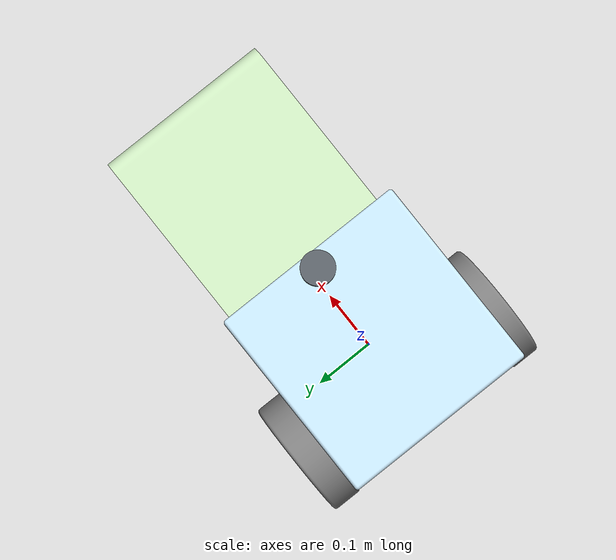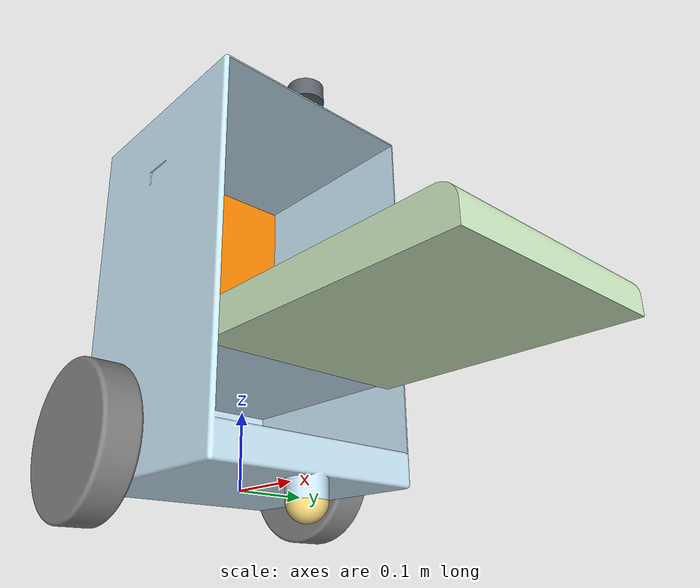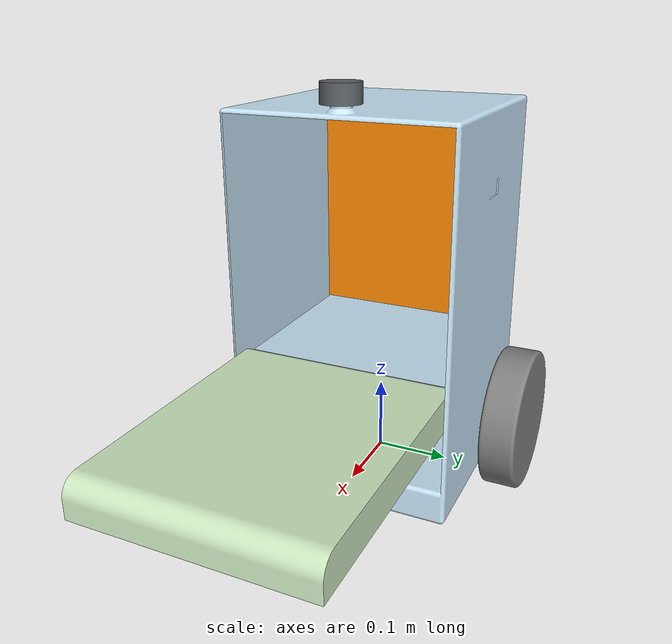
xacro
<robot name="DeliveryBot" xmlns:xacro="http://www.ros.org/wiki/xacro">
    <xacro:include filename="$(find deliverybot_description)/urdf/dbot.gazebo"/>

    <link name="base_link">
    </link>

    <joint name="base_link_to_base" type="fixed">
        <parent link="base_link"/>
        <child link="body" />
        <origin xyz="0 0 0" rpy="0 0 1.5707" />
    </joint>

    <link name="body">
        <visual>
            <origin xyz="-5.55112e-17 -0.00273569 -0.05" rpy="0 0 0" />
            <geometry>
                <mesh filename="package://deliverybot_description/urdf/meshes/body.dae"/>
            </geometry>
            <material name="body_material">
                <color rgba="0.768627 0.886275 0.952941 1.0"/>
            </material>
        </visual>
        <collision>
            <origin xyz="-5.55112e-17 -0.00273569 -0.05" rpy="0 0 0" />
            <geometry>
                <mesh filename="package://deliverybot_description/urdf/meshes/body.dae"/>
            </geometry>
            <material name="body_material">
                <color rgba="0.768627 0.886275 0.952941 1.0"/>
            </material>
        </collision>
        <inertial>
            <origin xyz="7.95747e-17 0.0121391 0.137455" rpy="0 0 0"/>
            <mass value="9.21638" />
            <inertia ixx="0.266" ixy="-1.282e-16" ixz="-1.605e-16" iyy="0.281" iyz="-0.014" izz="0.162" />
        </inertial>
    </link>

    <link name="left_wheel">
        <visual>
            <origin xyz="-0.075 -0.1 0.155" rpy="-1.5708 -1.5708 0" />
            <geometry>
                <mesh filename="package://deliverybot_description/urdf/meshes/left_wheel.dae"/>
            </geometry>
            <material name="left_wheel_material">
                <color rgba="0.498039 0.498039 0.498039 1.0"/>
            </material>
        </visual>
        <collision>
            <origin xyz="-0.075 -0.1 0.155" rpy="-1.5708 -1.5708 0" />
            <geometry>
                <mesh filename="package://deliverybot_description/urdf/meshes/left_wheel.dae"/>
            </geometry>
            <material name="left_wheel_material">
                <color rgba="0.498039 0.498039 0.498039 1.0"/>
            </material>
        </collision>
        <inertial>
            <origin xyz="0 0 -0.025" rpy="1.5707 0 0"/>
            <mass value="1.65248" />
            <inertia ixx="0.008" ixy="0" ixz="0" iyy="0.004" iyz="0" izz="0.004" />
        </inertial>
    </link>

    <joint name="joint_left_wheel" type="continuous">
        <origin xyz="0.155 0.0722643 0.05" rpy="0 -1.5708 0" /> <!-- rpy="-1.5708" -->
        <parent link="body" />
        <child link="left_wheel" />
        <axis xyz="0 0 -1"/>
        <limit effort="1" velocity="20" />
        <joint_properties friction="0.0"/>
    </joint>

    <link name="right_wheel">
        <visual>
            <origin xyz="-0.075 -0.1 -0.155" rpy="-1.5708 -1.5708 0" />
            <geometry>
                <mesh filename="package://deliverybot_description/urdf/meshes/right_wheel.dae"/>
            </geometry>
            <material name="left_wheel_material">
                <color rgba="0.498039 0.498039 0.498039 1.0"/>
            </material>
        </visual>
        <collision>
            <origin xyz="-0.075 -0.1 -0.155" rpy="-1.5708 -1.5708 0" />
            <geometry>
                <mesh filename="package://deliverybot_description/urdf/meshes/right_wheel.dae"/>
            </geometry>
            <material name="right_wheel_material">
                <color rgba="0.498039 0.498039 0.498039 1.0"/>
            </material>
        </collision>
        <inertial>
            <origin xyz="0 0 -0.025" rpy="1.5707 0 0"/>
            <mass value="1.65248" />
            <inertia ixx="0.008" ixy="0" ixz="0" iyy="0.004" iyz="0" izz="0.004" />
        </inertial>
    </link>

    <joint name="joint_right_wheel" type="continuous">
        <origin xyz="-0.155 0.0722643 0.05" rpy="0 -1.5708 0" /> <!-- rpy="-1.5708" -->
        <parent link="body" />
        <child link="right_wheel" />
        <axis xyz="0 0 -1"/>
        <limit effort="1" velocity="20" />
        <joint_properties friction="0.0"/>
    </joint>

    <link name="castor">
        <visual>
            <origin xyz="0 0.125 -0.025" rpy="0 -0 0" />
            <geometry>
                <mesh filename="package://deliverybot_description/urdf/meshes/castor.dae"/>
            </geometry>
            <material name="castor_material">
                <color rgba="0.960784 0.835294 0.470588 1.0"/>
            </material>
        </visual>
        <collision>
            <origin xyz="0 0.125 -0.025" rpy="0 -0 0" />
            <geometry>
                <mesh filename="package://deliverybot_description/urdf/meshes/castor.dae"/>
            </geometry>
            <material name="castor_material">
                <color rgba="0.960784 0.835294 0.470588 1.0"/>
            </material>
        </collision>
        <inertial>
            <origin xyz="0 0 3.46945e-18" rpy="0 0 0"/>
            <mass value="0.0688532" />
            <inertia ixx="1.72133e-05" ixy="0" ixz="0" iyy="1.72133e-05" iyz="0" izz="1.72133e-05" />
        </inertial>
    </link>

    <joint name="joint_castor" type="fixed">
        <origin xyz="-5.55112e-17 -0.127736 -0.025" rpy="0 0 0" />
        <parent link="body" />
        <child link="castor" />
        <axis xyz="0 0 1"/>
        <limit effort="10000000" velocity="20000" />
        <joint_properties friction="0.0"/>
    </joint>

    <link name="door">
        <visual>
            <origin xyz="0.127 -0.205 -0.145" rpy="-1.5708 -1.5708 0" />
            <geometry>
                <mesh filename="package://deliverybot_description/urdf/meshes/door.dae"/>
            </geometry>
            <material name="door_material">
                <color rgba="0.796078 0.905882 0.745098 1.0"/>
            </material>
        </visual>
        <collision>
            <origin xyz="0.127 -0.205 -0.145" rpy="-1.5708 -1.5708 0" />
            <geometry>
                <mesh filename="package://deliverybot_description/urdf/meshes/door.dae"/>
            </geometry>
            <material name="door_material">
                <color rgba="0.796078 0.905882 0.745098 1.0"/>
            </material>
        </collision>
        <inertial>
            <origin xyz="-0.000258506 0.145116 -0.145" rpy="1.5707 0 1.5707"/>
            <mass value="0.596718" />
            <inertia ixx="0.00521211" ixy="0" ixz="2.98715e-05" iyy="0.00816722" iyz="0" izz="0.0129235" />
        </inertial>
    </link>

    <joint name="joint_door" type="revolute">
        <origin xyz="0.145 -0.129736 0.155" rpy="-3.14159 -1.5708 0" />
        <parent link="body" />
        <child link="door" />
        <axis xyz="0 0 1"/>
        <limit effort="1" velocity="20" lower="-1.5708" upper="0.523599"/>
        <joint_properties friction="0.0"/>
    </joint>

<!-- Lidar -->
    <link name="sensor_laser">
        <visual>
            <origin xyz="0 -0.125 0.56" rpy="3.14159 0 0" />
            <geometry>
                <mesh filename="package://deliverybot_description/urdf/meshes/sensor_laser.dae"/>
            </geometry>
            <material name="sensor_laser_material">
                <color rgba="0.34902 0.376471 0.4 1.0"/>
            </material>
        </visual>
        <collision>
            <origin xyz="0 -0.125 0.56" rpy="3.14159 0 0" />
            <geometry>
                <mesh filename="package://deliverybot_description/urdf/meshes/sensor_laser.dae"/>
            </geometry>
            <material name="sensor_laser_material">
                <color rgba="0.34902 0.376471 0.4 1.0"/>
            </material>
        </collision>
        <inertial>
            <origin xyz="3.75509e-19 0 -0.0125" rpy="0 0 0"/>
            <mass value="0.0516399" />
            <inertia ixx="1.07583e-05" ixy="0" ixz="0" iyy="1.07583e-05" iyz="0" izz="1.61375e-05" />
        </inertial>
    </link>

    <joint name="joint_laser_sensor" type="fixed">
        <origin xyz="-5.55112e-17 -0.127736 0.535" rpy="0 0 3.1412" />
        <parent link="body" />
        <child link="sensor_laser" />
        <axis xyz="0 0 1"/>
        <limit effort="1" velocity="20" />
        <joint_properties friction="0.0"/>
    </joint>
<!-- Lidar -->

<!-- Kinect -->
    <link name="kinect">
    </link>

    <joint name="joint_kinect" type="fixed">
        <origin xyz="-5.55112e-17 -0.127736 0.55" rpy="0 0 -1.5707" />
        <parent link="body"/>
        <child link="kinect"/>
    </joint>

    <joint name="kinect_optical_joint" type="fixed">
        <origin xyz="0 0 0" rpy="-1.5708 0 -1.5708"/>
            <parent link="kinect"/>
            <child link="kinect_frame_optical"/>
    </joint>
    <link name="kinect_frame_optical"/>
<!-- Kinect -->

<!-- Pusher -->
    <link name="pusher">
        <visual name="visual">
            <origin xyz="0 0 0" rpy = "0 0 0"/>
            <geometry>
                <mesh filename="package://deliverybot_description/urdf/meshes/pusher.dae" />
            </geometry>
        </visual>
        <collision name="collision">
            <origin xyz="0 0 0" rpy = "0 0 0"/>
            <geometry>
                <mesh filename="package://deliverybot_description/urdf/meshes/pusher.dae" />
            </geometry>
        </collision>
        <inertial>
            <origin xyz="-0.12 0 0.333" rpy="0 0 0" />
            <mass value="0.2" />
            <inertia ixx="0.002" ixy="0" ixz="0" iyy="0.003" iyz="0" izz="0.001" />
        </inertial>
    </link>

    <joint name="joint_pusher" type="prismatic">
        <origin xyz="-0.12 0 -0.05" rpy="0 0 -1.5707" />
        <parent link="base_link"/>
        <child link="pusher" />
        <axis xyz="0 1 0" />
        <limit effort="1000" lower="0" upper="0.24" velocity="0.5"/>
    </joint>
<!-- Pusher -->

<!-- Upper Camera -->
  <joint name="upper_camera_joint" type="fixed">
    <axis xyz="0 1 0" />
    <origin xyz="-5.55112e-17 -0.127736 0.55" rpy="0 -0.2617 -1.5707" />
    <parent link="body"/>
    <child link="upper_camera_link"/>
  </joint>

  <link name="upper_camera_link" />
<!-- Upper Camera -->

<!-- Right Camera -->
  <joint name="right_camera_joint" type="fixed">
    <axis xyz="0 1 0" />
    <origin xyz="-0.15 0 0.45" rpy="0 0 3.1415" />
    <parent link="body"/>
    <child link="right_camera_link"/>
  </joint>

  <link name="right_camera_link" />
<!-- Right Camera -->

<!-- Left Camera -->
  <joint name="left_camera_joint" type="fixed">
    <axis xyz="0 1 0" />
    <origin xyz="0.15 0 0.45" rpy="0 0 0" />
    <parent link="body"/>
    <child link="left_camera_link"/>
  </joint>

  <link name="left_camera_link" />
<!-- Left Camera -->

</robot>
